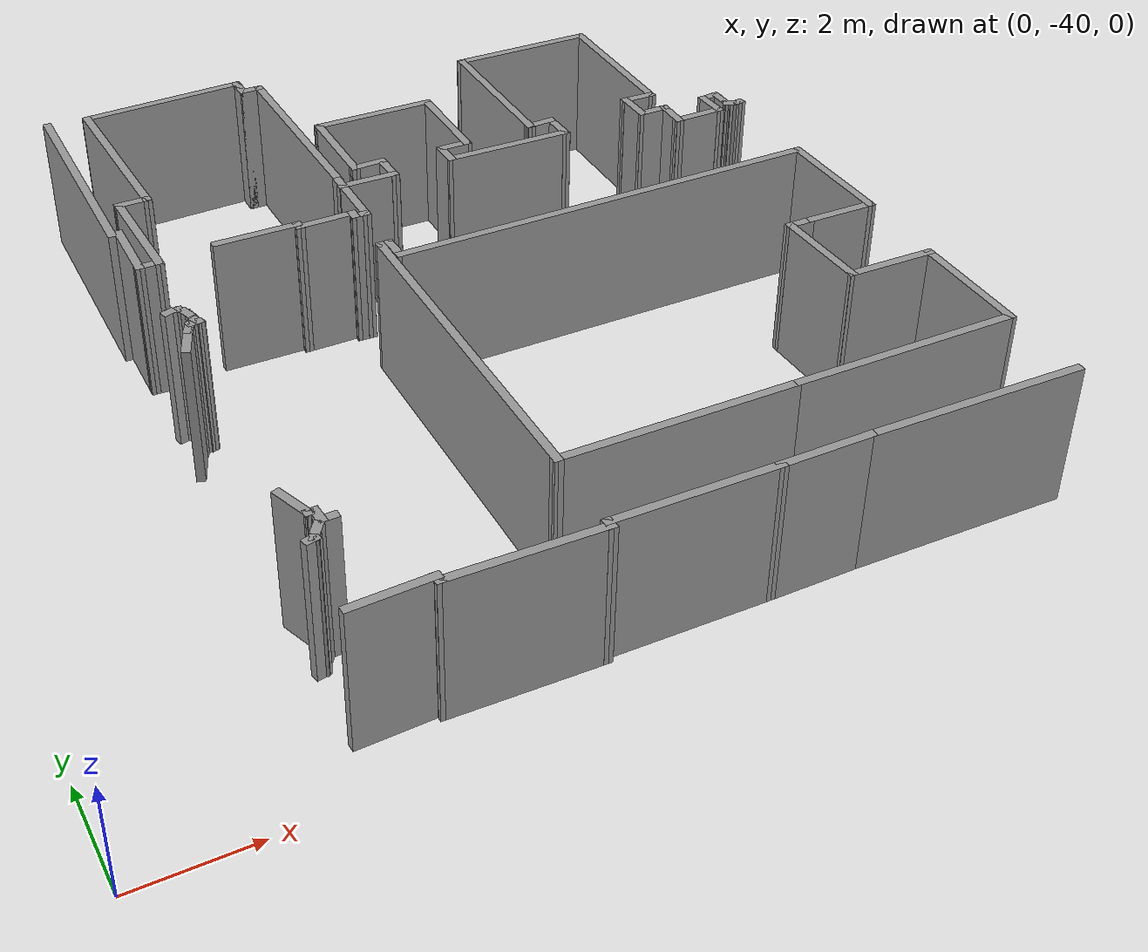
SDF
<sdf version="1.6">
 <model name="3_north">
  <pose>-14.229 -33.4428 0 0 -0 0</pose>
  <link name="Wall_100">
   <collision name="Wall_100_Collision">
    <geometry><box><size>3.97618 0.15 2.5</size></box></geometry>
    <pose>0 0 1.25 0 -0 0</pose>
   </collision>
   <visual name="Wall_100_Visual">
    <pose>0 0 1.25 0 -0 0</pose>
    <geometry><box><size>3.97618 0.15 2.5</size></box></geometry>
    <material>
     <script><uri>file://media/materials/scripts/gazebo.material</uri><name>Gazebo/Grey</name></script>
     <ambient>1 1 1 1</ambient>
    </material>
   </visual>
   <pose>21.8575 6.39452 0 0 0 -1.56398</pose>
  </link>
  <link name="Wall_102">
   <collision name="Wall_102_Collision">
    <geometry><box><size>1.57037 0.15 2.5</size></box></geometry>
    <pose>0 0 1.25 0 -0 0</pose>
   </collision>
   <visual name="Wall_102_Visual">
    <pose>0 0 1.25 0 -0 0</pose>
    <geometry><box><size>1.57037 0.15 2.5</size></box></geometry>
    <material>
     <script><uri>file://media/materials/scripts/gazebo.material</uri><name>Gazebo/Grey</name></script>
     <ambient>1 1 1 1</ambient>
    </material>
   </visual>
   <pose>19.9758 3.40527 0 0 0 -0.013888</pose>
  </link>
  <link name="Wall_103">
   <collision name="Wall_103_Collision">
    <geometry><box><size>0.235477 0.15 2.5</size></box></geometry>
    <pose>0 0 1.25 0 -0 0</pose>
   </collision>
   <visual name="Wall_103_Visual">
    <pose>0 0 1.25 0 -0 0</pose>
    <geometry><box><size>0.235477 0.15 2.5</size></box></geometry>
    <material>
     <script><uri>file://media/materials/scripts/gazebo.material</uri><name>Gazebo/Grey</name></script>
     <ambient>1 1 1 1</ambient>
    </material>
   </visual>
   <pose>20.6859 3.35267 0 0 0 -1.5708</pose>
  </link>
  <link name="Wall_104">
   <collision name="Wall_104_Collision">
    <geometry><box><size>1.11 0.15 2.5</size></box></geometry>
    <pose>0 0 1.25 0 -0 0</pose>
   </collision>
   <visual name="Wall_104_Visual">
    <pose>0 0 1.25 0 -0 0</pose>
    <geometry><box><size>1.11 0.15 2.5</size></box></geometry>
    <material>
     <script><uri>file://media/materials/scripts/gazebo.material</uri><name>Gazebo/Grey</name></script>
     <ambient>1 1 1 1</ambient>
    </material>
   </visual>
   <pose>21.1659 3.31322 0 0 -0 0.006849</pose>
  </link>
  <link name="Wall_105">
   <collision name="Wall_105_Collision">
    <geometry><box><size>0.248627 0.15 2.5</size></box></geometry>
    <pose>0 0 1.25 0 -0 0</pose>
   </collision>
   <visual name="Wall_105_Visual">
    <pose>0 0 1.25 0 -0 0</pose>
    <geometry><box><size>0.248627 0.15 2.5</size></box></geometry>
    <material>
     <script><uri>file://media/materials/scripts/gazebo.material</uri><name>Gazebo/Grey</name></script>
     <ambient>1 1 1 1</ambient>
    </material>
   </visual>
   <pose>21.6459 3.26719 0 0 0 -1.5708</pose>
  </link>
  <link name="Wall_106">
   <collision name="Wall_106_Collision">
    <geometry><box><size>0.347364 0.15 2.5</size></box></geometry>
    <pose>0 0 1.25 0 -0 0</pose>
   </collision>
   <visual name="Wall_106_Visual">
    <pose>0 0 1.25 0 -0 0</pose>
    <geometry><box><size>0.347364 0.15 2.5</size></box></geometry>
    <material>
     <script><uri>file://media/materials/scripts/gazebo.material</uri><name>Gazebo/Grey</name></script>
     <ambient>1 1 1 1</ambient>
    </material>
   </visual>
   <pose>21.7445 3.21459 0 0 0 -0.033321</pose>
  </link>
  <link name="Wall_107">
   <collision name="Wall_107_Collision">
    <geometry><box><size>1.39271 0.15 2.5</size></box></geometry>
    <pose>0 0 1.25 0 -0 0</pose>
   </collision>
   <visual name="Wall_107_Visual">
    <pose>0 0 1.25 0 -0 0</pose>
    <geometry><box><size>1.39271 0.15 2.5</size></box></geometry>
    <material>
     <script><uri>file://media/materials/scripts/gazebo.material</uri><name>Gazebo/Grey</name></script>
     <ambient>1 1 1 1</ambient>
    </material>
   </visual>
   <pose>21.8497 3.83265 0 0 -0 1.56021</pose>
  </link>
  <link name="Wall_110">
   <collision name="Wall_110_Collision">
    <geometry><box><size>1.11627 0.15 2.5</size></box></geometry>
    <pose>0 0 1.25 0 -0 0</pose>
   </collision>
   <visual name="Wall_110_Visual">
    <pose>0 0 1.25 0 -0 0</pose>
    <geometry><box><size>1.11627 0.15 2.5</size></box></geometry>
    <material>
     <script><uri>file://media/materials/scripts/gazebo.material</uri><name>Gazebo/Grey</name></script>
     <ambient>1 1 1 1</ambient>
    </material>
   </visual>
   <pose>22.3246 4.22289 0 0 0 -0.023805</pose>
  </link>
  <link name="Wall_111">
   <collision name="Wall_111_Collision">
    <geometry><box><size>0.6675 0.15 2.5</size></box></geometry>
    <pose>0 0 1.25 0 -0 0</pose>
   </collision>
   <visual name="Wall_111_Visual">
    <pose>0 0 1.25 0 -0 0</pose>
    <geometry><box><size>0.6675 0.15 2.5</size></box></geometry>
    <material>
     <script><uri>file://media/materials/scripts/gazebo.material</uri><name>Gazebo/Grey</name></script>
     <ambient>1 1 1 1</ambient>
    </material>
   </visual>
   <pose>22.8019 4.47014 0 0 -0 1.59302</pose>
  </link>
  <link name="Wall_112">
   <collision name="Wall_112_Collision">
    <geometry><box><size>0.667628 0.15 2.5</size></box></geometry>
    <pose>0 0 1.25 0 -0 0</pose>
   </collision>
   <visual name="Wall_112_Visual">
    <pose>0 0 1.25 0 -0 0</pose>
    <geometry><box><size>0.667628 0.15 2.5</size></box></geometry>
    <material>
     <script><uri>file://media/materials/scripts/gazebo.material</uri><name>Gazebo/Grey</name></script>
     <ambient>1 1 1 1</ambient>
    </material>
   </visual>
   <pose>22.5374 4.72314 0 0 0 -3.11937</pose>
  </link>
  <link name="Wall_113">
   <collision name="Wall_113_Collision">
    <geometry><box><size>1.82904 0.15 2.5</size></box></geometry>
    <pose>0 0 1.25 0 -0 0</pose>
   </collision>
   <visual name="Wall_113_Visual">
    <pose>0 0 1.25 0 -0 0</pose>
    <geometry><box><size>1.82904 0.15 2.5</size></box></geometry>
    <material>
     <script><uri>file://media/materials/scripts/gazebo.material</uri><name>Gazebo/Grey</name></script>
     <ambient>1 1 1 1</ambient>
    </material>
   </visual>
   <pose>22.2844 5.55689 0 0 -0 1.56395</pose>
  </link>
  <link name="Wall_114">
   <collision name="Wall_114_Collision">
    <geometry><box><size>2.28912 0.15 2.5</size></box></geometry>
    <pose>0 0 1.25 0 -0 0</pose>
   </collision>
   <visual name="Wall_114_Visual">
    <pose>0 0 1.25 0 -0 0</pose>
    <geometry><box><size>2.28912 0.15 2.5</size></box></geometry>
    <material>
     <script><uri>file://media/materials/scripts/gazebo.material</uri><name>Gazebo/Grey</name></script>
     <ambient>1 1 1 1</ambient>
    </material>
   </visual>
   <pose>23.3596 6.38489 0 0 0 -0.010752</pose>
  </link>
  <link name="Wall_115">
   <collision name="Wall_115_Collision">
    <geometry><box><size>1.86354 0.15 2.5</size></box></geometry>
    <pose>0 0 1.25 0 -0 0</pose>
   </collision>
   <visual name="Wall_115_Visual">
    <pose>0 0 1.25 0 -0 0</pose>
    <geometry><box><size>1.86354 0.15 2.5</size></box></geometry>
    <material>
     <script><uri>file://media/materials/scripts/gazebo.material</uri><name>Gazebo/Grey</name></script>
     <ambient>1 1 1 1</ambient>
    </material>
   </visual>
   <pose>24.4234 5.51664 0 0 0 -1.57751</pose>
  </link>
  <link name="Wall_116">
   <collision name="Wall_116_Collision">
    <geometry><box><size>0.6445 0.15 2.5</size></box></geometry>
    <pose>0 0 1.25 0 -0 0</pose>
   </collision>
   <visual name="Wall_116_Visual">
    <pose>0 0 1.25 0 -0 0</pose>
    <geometry><box><size>0.6445 0.15 2.5</size></box></geometry>
    <material>
     <script><uri>file://media/materials/scripts/gazebo.material</uri><name>Gazebo/Grey</name></script>
     <ambient>1 1 1 1</ambient>
    </material>
   </visual>
   <pose>24.1704 4.65989 0 0 -0 3.14159</pose>
  </link>
  <link name="Wall_117">
   <collision name="Wall_117_Collision">
    <geometry><box><size>0.5525 0.15 2.5</size></box></geometry>
    <pose>0 0 1.25 0 -0 0</pose>
   </collision>
   <visual name="Wall_117_Visual">
    <pose>0 0 1.25 0 -0 0</pose>
    <geometry><box><size>0.5525 0.15 2.5</size></box></geometry>
    <material>
     <script><uri>file://media/materials/scripts/gazebo.material</uri><name>Gazebo/Grey</name></script>
     <ambient>1 1 1 1</ambient>
    </material>
   </visual>
   <pose>23.9231 4.45864 0 0 0 -1.5708</pose>
  </link>
  <link name="Wall_118">
   <collision name="Wall_118_Collision">
    <geometry><box><size>2.39262 0.15 2.5</size></box></geometry>
    <pose>0 0 1.25 0 -0 0</pose>
   </collision>
   <visual name="Wall_118_Visual">
    <pose>0 0 1.25 0 -0 0</pose>
    <geometry><box><size>2.39262 0.15 2.5</size></box></geometry>
    <material>
     <script><uri>file://media/materials/scripts/gazebo.material</uri><name>Gazebo/Grey</name></script>
     <ambient>1 1 1 1</ambient>
    </material>
   </visual>
   <pose>25.0444 4.23439 0 0 0 -0.02051</pose>
  </link>
  <link name="Wall_119">
   <collision name="Wall_119_Collision">
    <geometry><box><size>0.667628 0.15 2.5</size></box></geometry>
    <pose>0 0 1.25 0 -0 0</pose>
   </collision>
   <visual name="Wall_119_Visual">
    <pose>0 0 1.25 0 -0 0</pose>
    <geometry><box><size>0.667628 0.15 2.5</size></box></geometry>
    <material>
     <script><uri>file://media/materials/scripts/gazebo.material</uri><name>Gazebo/Grey</name></script>
     <ambient>1 1 1 1</ambient>
    </material>
   </visual>
   <pose>26.1599 4.47014 0 0 -0 1.59302</pose>
  </link>
  <link name="Wall_120">
   <collision name="Wall_120_Collision">
    <geometry><box><size>0.587605 0.15 2.5</size></box></geometry>
    <pose>0 0 1.25 0 -0 0</pose>
   </collision>
   <visual name="Wall_120_Visual">
    <pose>0 0 1.25 0 -0 0</pose>
    <geometry><box><size>0.587605 0.15 2.5</size></box></geometry>
    <material>
     <script><uri>file://media/materials/scripts/gazebo.material</uri><name>Gazebo/Grey</name></script>
     <ambient>1 1 1 1</ambient>
    </material>
   </visual>
   <pose>25.9356 4.71739 0 0 0 -3.08901</pose>
  </link>
  <link name="Wall_121">
   <collision name="Wall_121_Collision">
    <geometry><box><size>3.02502 0.15 2.5</size></box></geometry>
    <pose>0 0 1.25 0 -0 0</pose>
   </collision>
   <visual name="Wall_121_Visual">
    <pose>0 0 1.25 0 -0 0</pose>
    <geometry><box><size>3.02502 0.15 2.5</size></box></geometry>
    <material>
     <script><uri>file://media/materials/scripts/gazebo.material</uri><name>Gazebo/Grey</name></script>
     <ambient>1 1 1 1</ambient>
    </material>
   </visual>
   <pose>25.7229 6.14339 0 0 -0 1.5668</pose>
  </link>
  <link name="Wall_122">
   <collision name="Wall_122_Collision">
    <geometry><box><size>2.72664 0.15 2.5</size></box></geometry>
    <pose>0 0 1.25 0 -0 0</pose>
   </collision>
   <visual name="Wall_122_Visual">
    <pose>0 0 1.25 0 -0 0</pose>
    <geometry><box><size>2.72664 0.15 2.5</size></box></geometry>
    <material>
     <script><uri>file://media/materials/scripts/gazebo.material</uri><name>Gazebo/Grey</name></script>
     <ambient>1 1 1 1</ambient>
    </material>
   </visual>
   <pose>27.0166 7.56939 0 0 0 -0.008928</pose>
  </link>
  <link name="Wall_123">
   <collision name="Wall_123_Collision">
    <geometry><box><size>2.93309 0.15 2.5</size></box></geometry>
    <pose>0 0 1.25 0 -0 0</pose>
   </collision>
   <visual name="Wall_123_Visual">
    <pose>0 0 1.25 0 -0 0</pose>
    <geometry><box><size>2.93309 0.15 2.5</size></box></geometry>
    <material>
     <script><uri>file://media/materials/scripts/gazebo.material</uri><name>Gazebo/Grey</name></script>
     <ambient>1 1 1 1</ambient>
    </material>
   </visual>
   <pose>28.2931 6.16639 0 0 0 -1.57906</pose>
  </link>
  <link name="Wall_124">
   <collision name="Wall_124_Collision">
    <geometry><box><size>0.667628 0.15 2.5</size></box></geometry>
    <pose>0 0 1.25 0 -0 0</pose>
   </collision>
   <visual name="Wall_124_Visual">
    <pose>0 0 1.25 0 -0 0</pose>
    <geometry><box><size>0.667628 0.15 2.5</size></box></geometry>
    <material>
     <script><uri>file://media/materials/scripts/gazebo.material</uri><name>Gazebo/Grey</name></script>
     <ambient>1 1 1 1</ambient>
    </material>
   </visual>
   <pose>28.0229 4.78064 0 0 -0 3.11937</pose>
  </link>
  <link name="Wall_125">
   <collision name="Wall_125_Collision">
    <geometry><box><size>0.725115 0.15 2.5</size></box></geometry>
    <pose>0 0 1.25 0 -0 0</pose>
   </collision>
   <visual name="Wall_125_Visual">
    <pose>0 0 1.25 0 -0 0</pose>
    <geometry><box><size>0.725115 0.15 2.5</size></box></geometry>
    <material>
     <script><uri>file://media/materials/scripts/gazebo.material</uri><name>Gazebo/Grey</name></script>
     <ambient>1 1 1 1</ambient>
    </material>
   </visual>
   <pose>27.7699 4.49889 0 0 0 -1.5508</pose>
  </link>
  <link name="Wall_126">
   <collision name="Wall_126_Collision">
    <geometry><box><size>0.633 0.15 2.5</size></box></geometry>
    <pose>0 0 1.25 0 -0 0</pose>
   </collision>
   <visual name="Wall_126_Visual">
    <pose>0 0 1.25 0 -0 0</pose>
    <geometry><box><size>0.633 0.15 2.5</size></box></geometry>
    <material>
     <script><uri>file://media/materials/scripts/gazebo.material</uri><name>Gazebo/Grey</name></script>
     <ambient>1 1 1 1</ambient>
    </material>
   </visual>
   <pose>28.0171 4.21139 0 0 -0 0</pose>
  </link>
  <link name="Wall_127">
   <collision name="Wall_127_Collision">
    <geometry><box><size>0.667628 0.15 2.5</size></box></geometry>
    <pose>0 0 1.25 0 -0 0</pose>
   </collision>
   <visual name="Wall_127_Visual">
    <pose>0 0 1.25 0 -0 0</pose>
    <geometry><box><size>0.667628 0.15 2.5</size></box></geometry>
    <material>
     <script><uri>file://media/materials/scripts/gazebo.material</uri><name>Gazebo/Grey</name></script>
     <ambient>1 1 1 1</ambient>
    </material>
   </visual>
   <pose>28.2529 3.95264 0 0 0 -1.59302</pose>
  </link>
  <link name="Wall_128">
   <collision name="Wall_128_Collision">
    <geometry><box><size>1.01258 0.15 2.5</size></box></geometry>
    <pose>0 0 1.25 0 -0 0</pose>
   </collision>
   <visual name="Wall_128_Visual">
    <pose>0 0 1.25 0 -0 0</pose>
    <geometry><box><size>1.01258 0.15 2.5</size></box></geometry>
    <material>
     <script><uri>file://media/materials/scripts/gazebo.material</uri><name>Gazebo/Grey</name></script>
     <ambient>1 1 1 1</ambient>
    </material>
   </visual>
   <pose>28.6784 3.69964 0 0 -0 0.013333</pose>
  </link>
  <link name="Wall_129">
   <collision name="Wall_129_Collision">
    <geometry><box><size>0.645035 0.15 2.5</size></box></geometry>
    <pose>0 0 1.25 0 -0 0</pose>
   </collision>
   <visual name="Wall_129_Visual">
    <pose>0 0 1.25 0 -0 0</pose>
    <geometry><box><size>0.645035 0.15 2.5</size></box></geometry>
    <material>
     <script><uri>file://media/materials/scripts/gazebo.material</uri><name>Gazebo/Grey</name></script>
     <ambient>1 1 1 1</ambient>
    </material>
   </visual>
   <pose>29.0981 3.95264 0 0 -0 1.61727</pose>
  </link>
  <link name="Wall_130">
   <collision name="Wall_130_Collision">
    <geometry><box><size>0.426957 0.15 2.5</size></box></geometry>
    <pose>0 0 1.25 0 -0 0</pose>
   </collision>
   <visual name="Wall_130_Visual">
    <pose>0 0 1.25 0 -0 0</pose>
    <geometry><box><size>0.426957 0.15 2.5</size></box></geometry>
    <material>
     <script><uri>file://media/materials/scripts/gazebo.material</uri><name>Gazebo/Grey</name></script>
     <ambient>1 1 1 1</ambient>
    </material>
   </visual>
   <pose>29.2246 4.21139 0 0 -0 0.083141</pose>
  </link>
  <link name="Wall_131">
   <collision name="Wall_131_Collision">
    <geometry><box><size>0.529674 0.15 2.5</size></box></geometry>
    <pose>0 0 1.25 0 -0 0</pose>
   </collision>
   <visual name="Wall_131_Visual">
    <pose>0 0 1.25 0 -0 0</pose>
    <geometry><box><size>0.529674 0.15 2.5</size></box></geometry>
    <material>
     <script><uri>file://media/materials/scripts/gazebo.material</uri><name>Gazebo/Grey</name></script>
     <ambient>1 1 1 1</ambient>
    </material>
   </visual>
   <pose>29.3684 4.03314 0 0 0 -1.5405</pose>
  </link>
  <link name="Wall_132">
   <collision name="Wall_132_Collision">
    <geometry><box><size>0.252859 0.15 2.5</size></box></geometry>
    <pose>0 0 1.25 0 -0 0</pose>
   </collision>
   <visual name="Wall_132_Visual">
    <pose>0 0 1.25 0 -0 0</pose>
    <geometry><box><size>0.252859 0.15 2.5</size></box></geometry>
    <material>
     <script><uri>file://media/materials/scripts/gazebo.material</uri><name>Gazebo/Grey</name></script>
     <ambient>1 1 1 1</ambient>
    </material>
   </visual>
   <pose>29.4201 3.82039 0 0 0 -0.463648</pose>
  </link>
  <link name="Wall_133">
   <collision name="Wall_133_Collision">
    <geometry><box><size>0.242716 0.15 2.5</size></box></geometry>
    <pose>0 0 1.25 0 -0 0</pose>
   </collision>
   <visual name="Wall_133_Visual">
    <pose>0 0 1.25 0 -0 0</pose>
    <geometry><box><size>0.242716 0.15 2.5</size></box></geometry>
    <material>
     <script><uri>file://media/materials/scripts/gazebo.material</uri><name>Gazebo/Grey</name></script>
     <ambient>1 1 1 1</ambient>
    </material>
   </visual>
   <pose>29.5121 3.79164 0 0 0 -0.124355</pose>
  </link>
  <link name="Wall_134">
   <collision name="Wall_134_Collision">
    <geometry><box><size>0.219952 0.15 2.5</size></box></geometry>
    <pose>0 0 1.25 0 -0 0</pose>
   </collision>
   <visual name="Wall_134_Visual">
    <pose>0 0 1.25 0 -0 0</pose>
    <geometry><box><size>0.219952 0.15 2.5</size></box></geometry>
    <material>
     <script><uri>file://media/materials/scripts/gazebo.material</uri><name>Gazebo/Grey</name></script>
     <ambient>1 1 1 1</ambient>
    </material>
   </visual>
   <pose>29.5926 3.79164 0 0 -0 0.165149</pose>
  </link>
  <link name="Wall_136">
   <collision name="Wall_136_Collision">
    <geometry><box><size>7.88001 0.15 2.5</size></box></geometry>
    <pose>0 0 1.25 0 -0 0</pose>
   </collision>
   <visual name="Wall_136_Visual">
    <pose>0 0 1.25 0 -0 0</pose>
    <geometry><box><size>7.88001 0.15 2.5</size></box></geometry>
    <material>
     <script><uri>file://media/materials/scripts/gazebo.material</uri><name>Gazebo/Grey</name></script>
     <ambient>1 1 1 1</ambient>
    </material>
   </visual>
   <pose>25.6999 1.76967 0 0 0 -3.1403</pose>
  </link>
  <link name="Wall_138">
   <collision name="Wall_138_Collision">
    <geometry><box><size>0.570119 0.15 2.5</size></box></geometry>
    <pose>0 0 1.25 0 -0 0</pose>
   </collision>
   <visual name="Wall_138_Visual">
    <pose>0 0 1.25 0 -0 0</pose>
    <geometry><box><size>0.570119 0.15 2.5</size></box></geometry>
    <material>
     <script><uri>file://media/materials/scripts/gazebo.material</uri><name>Gazebo/Grey</name></script>
     <ambient>1 1 1 1</ambient>
    </material>
   </visual>
   <pose>21.8299 1.97467 0 0 -0 1.5946</pose>
  </link>
  <link name="Wall_139">
   <collision name="Wall_139_Collision">
    <geometry><box><size>0.3 0.15 2.5</size></box></geometry>
    <pose>0 0 1.25 0 -0 0</pose>
   </collision>
   <visual name="Wall_139_Visual">
    <pose>0 0 1.25 0 -0 0</pose>
    <geometry><box><size>0.3 0.15 2.5</size></box></geometry>
    <material>
     <script><uri>file://media/materials/scripts/gazebo.material</uri><name>Gazebo/Grey</name></script>
     <ambient>1 1 1 1</ambient>
    </material>
   </visual>
   <pose>21.7499 2.18467 0 0 -0 3.14159</pose>
  </link>
  <link name="Wall_140">
   <collision name="Wall_140_Collision">
    <geometry><box><size>6.42039 0.15 2.5</size></box></geometry>
    <pose>0 0 1.25 0 -0 0</pose>
   </collision>
   <visual name="Wall_140_Visual">
    <pose>0 0 1.25 0 -0 0</pose>
    <geometry><box><size>6.42039 0.15 2.5</size></box></geometry>
    <material>
     <script><uri>file://media/materials/scripts/gazebo.material</uri><name>Gazebo/Grey</name></script>
     <ambient>1 1 1 1</ambient>
    </material>
   </visual>
   <pose>21.6499 -0.95033 0 0 0 -1.57877</pose>
  </link>
  <link name="Wall_142">
   <collision name="Wall_142_Collision">
    <geometry><box><size>4.1902 0.15 2.5</size></box></geometry>
    <pose>0 0 1.25 0 -0 0</pose>
   </collision>
   <visual name="Wall_142_Visual">
    <pose>0 0 1.25 0 -0 0</pose>
    <geometry><box><size>4.1902 0.15 2.5</size></box></geometry>
    <material>
     <script><uri>file://media/materials/scripts/gazebo.material</uri><name>Gazebo/Grey</name></script>
     <ambient>1 1 1 1</ambient>
    </material>
   </visual>
   <pose>23.6449 -4.09033 0 0 0 -0.002475</pose>
  </link>
  <link name="Wall_143">
   <collision name="Wall_143_Collision">
    <geometry><box><size>4.03001 0.15 2.5</size></box></geometry>
    <pose>0 0 1.25 0 -0 0</pose>
   </collision>
   <visual name="Wall_143_Visual">
    <pose>0 0 1.25 0 -0 0</pose>
    <geometry><box><size>4.03001 0.15 2.5</size></box></geometry>
    <material>
     <script><uri>file://media/materials/scripts/gazebo.material</uri><name>Gazebo/Grey</name></script>
     <ambient>1 1 1 1</ambient>
    </material>
   </visual>
   <pose>27.6049 -4.10033 0 0 0 -0.002577</pose>
  </link>
  <link name="Wall_144">
   <collision name="Wall_144_Collision">
    <geometry><box><size>2.2201 0.15 2.5</size></box></geometry>
    <pose>0 0 1.25 0 -0 0</pose>
   </collision>
   <visual name="Wall_144_Visual">
    <pose>0 0 1.25 0 -0 0</pose>
    <geometry><box><size>2.2201 0.15 2.5</size></box></geometry>
    <material>
     <script><uri>file://media/materials/scripts/gazebo.material</uri><name>Gazebo/Grey</name></script>
     <ambient>1 1 1 1</ambient>
    </material>
   </visual>
   <pose>29.5549 -3.07033 0 0 -0 1.56113</pose>
  </link>
  <link name="Wall_145">
   <collision name="Wall_145_Collision">
    <geometry><box><size>1.6503 0.15 2.5</size></box></geometry>
    <pose>0 0 1.25 0 -0 0</pose>
   </collision>
   <visual name="Wall_145_Visual">
    <pose>0 0 1.25 0 -0 0</pose>
    <geometry><box><size>1.6503 0.15 2.5</size></box></geometry>
    <material>
     <script><uri>file://media/materials/scripts/gazebo.material</uri><name>Gazebo/Grey</name></script>
     <ambient>1 1 1 1</ambient>
    </material>
   </visual>
   <pose>28.8149 -2.02033 0 0 -0 3.1216</pose>
  </link>
  <link name="Wall_147">
   <collision name="Wall_147_Collision">
    <geometry><box><size>1.83074 0.15 2.5</size></box></geometry>
    <pose>0 0 1.25 0 -0 0</pose>
   </collision>
   <visual name="Wall_147_Visual">
    <pose>0 0 1.25 0 -0 0</pose>
    <geometry><box><size>1.83074 0.15 2.5</size></box></geometry>
    <material>
     <script><uri>file://media/materials/scripts/gazebo.material</uri><name>Gazebo/Grey</name></script>
     <ambient>1 1 1 1</ambient>
    </material>
   </visual>
   <pose>28.0399 -1.16533 0 0 -0 1.60055</pose>
  </link>
  <link name="Wall_148">
   <collision name="Wall_148_Collision">
    <geometry><box><size>0.57 0.15 2.5</size></box></geometry>
    <pose>0 0 1.25 0 -0 0</pose>
   </collision>
   <visual name="Wall_148_Visual">
    <pose>0 0 1.25 0 -0 0</pose>
    <geometry><box><size>0.57 0.15 2.5</size></box></geometry>
    <material>
     <script><uri>file://media/materials/scripts/gazebo.material</uri><name>Gazebo/Grey</name></script>
     <ambient>1 1 1 1</ambient>
    </material>
   </visual>
   <pose>28.2249 -0.32533 0 0 -0 0</pose>
  </link>
  <link name="Wall_149">
   <collision name="Wall_149_Collision">
    <geometry><box><size>1.31017 0.15 2.5</size></box></geometry>
    <pose>0 0 1.25 0 -0 0</pose>
   </collision>
   <visual name="Wall_149_Visual">
    <pose>0 0 1.25 0 -0 0</pose>
    <geometry><box><size>1.31017 0.15 2.5</size></box></geometry>
    <material>
     <script><uri>file://media/materials/scripts/gazebo.material</uri><name>Gazebo/Grey</name></script>
     <ambient>1 1 1 1</ambient>
    </material>
   </visual>
   <pose>29.0149 -0.33533 0 0 0 -0.01724</pose>
  </link>
  <link name="Wall_150">
   <collision name="Wall_150_Collision">
    <geometry><box><size>2.27059 0.15 2.5</size></box></geometry>
    <pose>0 0 1.25 0 -0 0</pose>
   </collision>
   <visual name="Wall_150_Visual">
    <pose>0 0 1.25 0 -0 0</pose>
    <geometry><box><size>2.27059 0.15 2.5</size></box></geometry>
    <material>
     <script><uri>file://media/materials/scripts/gazebo.material</uri><name>Gazebo/Grey</name></script>
     <ambient>1 1 1 1</ambient>
    </material>
   </visual>
   <pose>29.5799 0.71467 0 0 -0 1.58495</pose>
  </link>
  <link name="Wall_152">
   <collision name="Wall_152_Collision">
    <geometry><box><size>3.85049 0.15 2.5</size></box></geometry>
    <pose>0 0 1.25 0 -0 0</pose>
   </collision>
   <visual name="Wall_152_Visual">
    <pose>0 0 1.25 0 -0 0</pose>
    <geometry><box><size>3.85049 0.15 2.5</size></box></geometry>
    <material>
     <script><uri>file://media/materials/scripts/gazebo.material</uri><name>Gazebo/Grey</name></script>
     <ambient>1 1 1 1</ambient>
    </material>
   </visual>
   <pose>27.7149 -5.62533 0 0 -0 3.12538</pose>
  </link>
  <link name="Wall_153">
   <collision name="Wall_153_Collision">
    <geometry><box><size>1.66003 0.15 2.5</size></box></geometry>
    <pose>0 0 1.25 0 -0 0</pose>
   </collision>
   <visual name="Wall_153_Visual">
    <pose>0 0 1.25 0 -0 0</pose>
    <geometry><box><size>1.66003 0.15 2.5</size></box></geometry>
    <material>
     <script><uri>file://media/materials/scripts/gazebo.material</uri><name>Gazebo/Grey</name></script>
     <ambient>1 1 1 1</ambient>
    </material>
   </visual>
   <pose>25.1099 -5.60033 0 0 0 -3.13497</pose>
  </link>
  <link name="Wall_155">
   <collision name="Wall_155_Collision">
    <geometry><box><size>2.90016 0.15 2.5</size></box></geometry>
    <pose>0 0 1.25 0 -0 0</pose>
   </collision>
   <visual name="Wall_155_Visual">
    <pose>0 0 1.25 0 -0 0</pose>
    <geometry><box><size>2.90016 0.15 2.5</size></box></geometry>
    <material>
     <script><uri>file://media/materials/scripts/gazebo.material</uri><name>Gazebo/Grey</name></script>
     <ambient>1 1 1 1</ambient>
    </material>
   </visual>
   <pose>22.9799 -5.59533 0 0 -0 3.13432</pose>
  </link>
  <link name="Wall_156">
   <collision name="Wall_156_Collision">
    <geometry><box><size>0.24 0.15 2.5</size></box></geometry>
    <pose>0 0 1.25 0 -0 0</pose>
   </collision>
   <visual name="Wall_156_Visual">
    <pose>0 0 1.25 0 -0 0</pose>
    <geometry><box><size>0.24 0.15 2.5</size></box></geometry>
    <material>
     <script><uri>file://media/materials/scripts/gazebo.material</uri><name>Gazebo/Grey</name></script>
     <ambient>1 1 1 1</ambient>
    </material>
   </visual>
   <pose>21.6049 -5.63033 0 0 0 -1.5708</pose>
  </link>
  <link name="Wall_157">
   <collision name="Wall_157_Collision">
    <geometry><box><size>2.6505 0.15 2.5</size></box></geometry>
    <pose>0 0 1.25 0 -0 0</pose>
   </collision>
   <visual name="Wall_157_Visual">
    <pose>0 0 1.25 0 -0 0</pose>
    <geometry><box><size>2.6505 0.15 2.5</size></box></geometry>
    <material>
     <script><uri>file://media/materials/scripts/gazebo.material</uri><name>Gazebo/Grey</name></script>
     <ambient>1 1 1 1</ambient>
    </material>
   </visual>
   <pose>20.3549 -5.65033 0 0 -0 3.1216</pose>
  </link>
  <link name="Wall_158">
   <collision name="Wall_158_Collision">
    <geometry><box><size>0.24 0.15 2.5</size></box></geometry>
    <pose>0 0 1.25 0 -0 0</pose>
   </collision>
   <visual name="Wall_158_Visual">
    <pose>0 0 1.25 0 -0 0</pose>
    <geometry><box><size>0.24 0.15 2.5</size></box></geometry>
    <material>
     <script><uri>file://media/materials/scripts/gazebo.material</uri><name>Gazebo/Grey</name></script>
     <ambient>1 1 1 1</ambient>
    </material>
   </visual>
   <pose>19.1049 -5.58033 0 0 -0 1.5708</pose>
  </link>
  <link name="Wall_159">
   <collision name="Wall_159_Collision">
    <geometry><box><size>1.43098 0.15 2.5</size></box></geometry>
    <pose>0 0 1.25 0 -0 0</pose>
   </collision>
   <visual name="Wall_159_Visual">
    <pose>0 0 1.25 0 -0 0</pose>
    <geometry><box><size>1.43098 0.15 2.5</size></box></geometry>
    <material>
     <script><uri>file://media/materials/scripts/gazebo.material</uri><name>Gazebo/Grey</name></script>
     <ambient>1 1 1 1</ambient>
    </material>
   </visual>
   <pose>18.4649 -5.56033 0 0 0 -3.10255</pose>
  </link>
  <link name="Wall_398">
   <collision name="Wall_398_Collision">
    <geometry><box><size>0.233721 0.15 2.5</size></box></geometry>
    <pose>0 0 1.25 0 -0 0</pose>
   </collision>
   <visual name="Wall_398_Visual">
    <pose>0 0 1.25 0 -0 0</pose>
    <geometry><box><size>0.233721 0.15 2.5</size></box></geometry>
    <material>
     <script><uri>file://media/materials/scripts/gazebo.material</uri><name>Gazebo/Grey</name></script>
     <ambient>1 1 1 1</ambient>
    </material>
   </visual>
   <pose>17.9379 1.83794 0 0 -0 0.2783</pose>
  </link>
  <link name="Wall_399">
   <collision name="Wall_399_Collision">
    <geometry><box><size>0.265 0.15 2.5</size></box></geometry>
    <pose>0 0 1.25 0 -0 0</pose>
   </collision>
   <visual name="Wall_399_Visual">
    <pose>0 0 1.25 0 -0 0</pose>
    <geometry><box><size>0.265 0.15 2.5</size></box></geometry>
    <material>
     <script><uri>file://media/materials/scripts/gazebo.material</uri><name>Gazebo/Grey</name></script>
     <ambient>1 1 1 1</ambient>
    </material>
   </visual>
   <pose>18.0356 1.84943 0 0 -0 0</pose>
  </link>
  <link name="Wall_400">
   <collision name="Wall_400_Collision">
    <geometry><box><size>0.256025 0.15 2.5</size></box></geometry>
    <pose>0 0 1.25 0 -0 0</pose>
   </collision>
   <visual name="Wall_400_Visual">
    <pose>0 0 1.25 0 -0 0</pose>
    <geometry><box><size>0.256025 0.15 2.5</size></box></geometry>
    <material>
     <script><uri>file://media/materials/scripts/gazebo.material</uri><name>Gazebo/Grey</name></script>
     <ambient>1 1 1 1</ambient>
    </material>
   </visual>
   <pose>18.1276 1.80919 0 0 0 -0.86217</pose>
  </link>
  <link name="Wall_401">
   <collision name="Wall_401_Collision">
    <geometry><box><size>0.284604 0.15 2.5</size></box></geometry>
    <pose>0 0 1.25 0 -0 0</pose>
   </collision>
   <visual name="Wall_401_Visual">
    <pose>0 0 1.25 0 -0 0</pose>
    <geometry><box><size>0.284604 0.15 2.5</size></box></geometry>
    <material>
     <script><uri>file://media/materials/scripts/gazebo.material</uri><name>Gazebo/Grey</name></script>
     <ambient>1 1 1 1</ambient>
    </material>
   </visual>
   <pose>18.1851 1.70568 0 0 0 -1.22202</pose>
  </link>
  <link name="Wall_402">
   <collision name="Wall_402_Collision">
    <geometry><box><size>0.325916 0.15 2.5</size></box></geometry>
    <pose>0 0 1.25 0 -0 0</pose>
   </collision>
   <visual name="Wall_402_Visual">
    <pose>0 0 1.25 0 -0 0</pose>
    <geometry><box><size>0.325916 0.15 2.5</size></box></geometry>
    <material>
     <script><uri>file://media/materials/scripts/gazebo.material</uri><name>Gazebo/Grey</name></script>
     <ambient>1 1 1 1</ambient>
    </material>
   </visual>
   <pose>18.2254 1.55618 0 0 0 -1.3734</pose>
  </link>
  <link name="Wall_403">
   <collision name="Wall_403_Collision">
    <geometry><box><size>0.227144 0.15 2.5</size></box></geometry>
    <pose>0 0 1.25 0 -0 0</pose>
   </collision>
   <visual name="Wall_403_Visual">
    <pose>0 0 1.25 0 -0 0</pose>
    <geometry><box><size>0.227144 0.15 2.5</size></box></geometry>
    <material>
     <script><uri>file://media/materials/scripts/gazebo.material</uri><name>Gazebo/Grey</name></script>
     <ambient>1 1 1 1</ambient>
    </material>
   </visual>
   <pose>18.2599 1.43544 0 0 0 -1.10715</pose>
  </link>
  <link name="Wall_404">
   <collision name="Wall_404_Collision">
    <geometry><box><size>0.288478 0.15 2.5</size></box></geometry>
    <pose>0 0 1.25 0 -0 0</pose>
   </collision>
   <visual name="Wall_404_Visual">
    <pose>0 0 1.25 0 -0 0</pose>
    <geometry><box><size>0.288478 0.15 2.5</size></box></geometry>
    <material>
     <script><uri>file://media/materials/scripts/gazebo.material</uri><name>Gazebo/Grey</name></script>
     <ambient>1 1 1 1</ambient>
    </material>
   </visual>
   <pose>18.2081 1.39518 0 0 0 -3.05845</pose>
  </link>
  <link name="Wall_405">
   <collision name="Wall_405_Collision">
    <geometry><box><size>0.335432 0.15 2.5</size></box></geometry>
    <pose>0 0 1.25 0 -0 0</pose>
   </collision>
   <visual name="Wall_405_Visual">
    <pose>0 0 1.25 0 -0 0</pose>
    <geometry><box><size>0.335432 0.15 2.5</size></box></geometry>
    <material>
     <script><uri>file://media/materials/scripts/gazebo.material</uri><name>Gazebo/Grey</name></script>
     <ambient>1 1 1 1</ambient>
    </material>
   </visual>
   <pose>18.0931 1.30893 0 0 0 -2.08994</pose>
  </link>
  <link name="Wall_406">
   <collision name="Wall_406_Collision">
    <geometry><box><size>0.671065 0.15 2.5</size></box></geometry>
    <pose>0 0 1.25 0 -0 0</pose>
   </collision>
   <visual name="Wall_406_Visual">
    <pose>0 0 1.25 0 -0 0</pose>
    <geometry><box><size>0.671065 0.15 2.5</size></box></geometry>
    <material>
     <script><uri>file://media/materials/scripts/gazebo.material</uri><name>Gazebo/Grey</name></script>
     <ambient>1 1 1 1</ambient>
    </material>
   </visual>
   <pose>17.9494 0.986935 0 0 0 -1.9554</pose>
  </link>
  <link name="Wall_414">
   <collision name="Wall_414_Collision">
    <geometry><box><size>0.761125 0.15 2.5</size></box></geometry>
    <pose>0 0 1.25 0 -0 0</pose>
   </collision>
   <visual name="Wall_414_Visual">
    <pose>0 0 1.25 0 -0 0</pose>
    <geometry><box><size>0.761125 0.15 2.5</size></box></geometry>
    <material>
     <script><uri>file://media/materials/scripts/gazebo.material</uri><name>Gazebo/Grey</name></script>
     <ambient>1 1 1 1</ambient>
    </material>
   </visual>
   <pose>17.9896 -3.32557 0 0 0 -1.22524</pose>
  </link>
  <link name="Wall_415">
   <collision name="Wall_415_Collision">
    <geometry><box><size>0.242 0.15 2.5</size></box></geometry>
    <pose>0 0 1.25 0 -0 0</pose>
   </collision>
   <visual name="Wall_415_Visual">
    <pose>0 0 1.25 0 -0 0</pose>
    <geometry><box><size>0.242 0.15 2.5</size></box></geometry>
    <material>
     <script><uri>file://media/materials/scripts/gazebo.material</uri><name>Gazebo/Grey</name></script>
     <ambient>1 1 1 1</ambient>
    </material>
   </visual>
   <pose>18.1391 -3.61307 0 0 -0 0</pose>
  </link>
  <link name="Wall_416">
   <collision name="Wall_416_Collision">
    <geometry><box><size>0.357319 0.15 2.5</size></box></geometry>
    <pose>0 0 1.25 0 -0 0</pose>
   </collision>
   <visual name="Wall_416_Visual">
    <pose>0 0 1.25 0 -0 0</pose>
    <geometry><box><size>0.357319 0.15 2.5</size></box></geometry>
    <material>
     <script><uri>file://media/materials/scripts/gazebo.material</uri><name>Gazebo/Grey</name></script>
     <ambient>1 1 1 1</ambient>
    </material>
   </visual>
   <pose>18.1909 -3.71657 0 0 0 -1.5153</pose>
  </link>
  <link name="Wall_417">
   <collision name="Wall_417_Collision">
    <geometry><box><size>0.334 0.15 2.5</size></box></geometry>
    <pose>0 0 1.25 0 -0 0</pose>
   </collision>
   <visual name="Wall_417_Visual">
    <pose>0 0 1.25 0 -0 0</pose>
    <geometry><box><size>0.334 0.15 2.5</size></box></geometry>
    <material>
     <script><uri>file://media/materials/scripts/gazebo.material</uri><name>Gazebo/Grey</name></script>
     <ambient>1 1 1 1</ambient>
    </material>
   </visual>
   <pose>18.2886 -3.82007 0 0 -0 0</pose>
  </link>
  <link name="Wall_423">
   <collision name="Wall_423_Collision">
    <geometry><box><size>0.256025 0.15 2.5</size></box></geometry>
    <pose>0 0 1.25 0 -0 0</pose>
   </collision>
   <visual name="Wall_423_Visual">
    <pose>0 0 1.25 0 -0 0</pose>
    <geometry><box><size>0.256025 0.15 2.5</size></box></geometry>
    <material>
     <script><uri>file://media/materials/scripts/gazebo.material</uri><name>Gazebo/Grey</name></script>
     <ambient>1 1 1 1</ambient>
    </material>
   </visual>
   <pose>17.9264 -4.14206 0 0 -0 0.218669</pose>
  </link>
  <link name="Wall_424">
   <collision name="Wall_424_Collision">
    <geometry><box><size>0.294095 0.15 2.5</size></box></geometry>
    <pose>0 0 1.25 0 -0 0</pose>
   </collision>
   <visual name="Wall_424_Visual">
    <pose>0 0 1.25 0 -0 0</pose>
    <geometry><box><size>0.294095 0.15 2.5</size></box></geometry>
    <material>
     <script><uri>file://media/materials/scripts/gazebo.material</uri><name>Gazebo/Grey</name></script>
     <ambient>1 1 1 1</ambient>
    </material>
   </visual>
   <pose>18.0126 -4.06731 0 0 -0 1.07145</pose>
  </link>
  <link name="Wall_425">
   <collision name="Wall_425_Collision">
    <geometry><box><size>0.363912 0.15 2.5</size></box></geometry>
    <pose>0 0 1.25 0 -0 0</pose>
   </collision>
   <visual name="Wall_425_Visual">
    <pose>0 0 1.25 0 -0 0</pose>
    <geometry><box><size>0.363912 0.15 2.5</size></box></geometry>
    <material>
     <script><uri>file://media/materials/scripts/gazebo.material</uri><name>Gazebo/Grey</name></script>
     <ambient>1 1 1 1</ambient>
    </material>
   </visual>
   <pose>18.1104 -3.91782 0 0 -0 0.938048</pose>
  </link>
  <link name="Wall_85">
   <collision name="Wall_85_Collision">
    <geometry><box><size>4.31789 0.15 2.5</size></box></geometry>
    <pose>0 0 1.25 0 -0 0</pose>
   </collision>
   <visual name="Wall_85_Visual">
    <pose>0 0 1.25 0 -0 0</pose>
    <geometry><box><size>4.31789 0.15 2.5</size></box></geometry>
    <material>
     <script><uri>file://media/materials/scripts/gazebo.material</uri><name>Gazebo/Grey</name></script>
     <ambient>1 1 1 1</ambient>
    </material>
   </visual>
   <pose>17.8571 6.54134 0 0 0 -1.58904</pose>
  </link>
  <link name="Wall_88">
   <collision name="Wall_88_Collision">
    <geometry><box><size>1.30712 0.15 2.5</size></box></geometry>
    <pose>0 0 1.25 0 -0 0</pose>
   </collision>
   <visual name="Wall_88_Visual">
    <pose>0 0 1.25 0 -0 0</pose>
    <geometry><box><size>1.30712 0.15 2.5</size></box></geometry>
    <material>
     <script><uri>file://media/materials/scripts/gazebo.material</uri><name>Gazebo/Grey</name></script>
     <ambient>1 1 1 1</ambient>
    </material>
   </visual>
   <pose>17.9344 3.88281 0 0 0 -1.5904</pose>
  </link>
  <link name="Wall_90">
   <collision name="Wall_90_Collision">
    <geometry><box><size>0.480086 0.15 2.5</size></box></geometry>
    <pose>0 0 1.25 0 -0 0</pose>
   </collision>
   <visual name="Wall_90_Visual">
    <pose>0 0 1.25 0 -0 0</pose>
    <geometry><box><size>0.480086 0.15 2.5</size></box></geometry>
    <material>
     <script><uri>file://media/materials/scripts/gazebo.material</uri><name>Gazebo/Grey</name></script>
     <ambient>1 1 1 1</ambient>
    </material>
   </visual>
   <pose>18.0881 3.30162 0 0 0 -0.016642</pose>
  </link>
  <link name="Wall_91">
   <collision name="Wall_91_Collision">
    <geometry><box><size>2.16786 0.15 2.5</size></box></geometry>
    <pose>0 0 1.25 0 -0 0</pose>
   </collision>
   <visual name="Wall_91_Visual">
    <pose>0 0 1.25 0 -0 0</pose>
    <geometry><box><size>2.16786 0.15 2.5</size></box></geometry>
    <material>
     <script><uri>file://media/materials/scripts/gazebo.material</uri><name>Gazebo/Grey</name></script>
     <ambient>1 1 1 1</ambient>
    </material>
   </visual>
   <pose>18.2314 4.30757 0 0 -0 1.59234</pose>
  </link>
  <link name="Wall_92">
   <collision name="Wall_92_Collision">
    <geometry><box><size>0.636957 0.15 2.5</size></box></geometry>
    <pose>0 0 1.25 0 -0 0</pose>
   </collision>
   <visual name="Wall_92_Visual">
    <pose>0 0 1.25 0 -0 0</pose>
    <geometry><box><size>0.636957 0.15 2.5</size></box></geometry>
    <material>
     <script><uri>file://media/materials/scripts/gazebo.material</uri><name>Gazebo/Grey</name></script>
     <ambient>1 1 1 1</ambient>
    </material>
   </visual>
   <pose>18.4531 5.31626 0 0 -0 0</pose>
  </link>
  <link name="Wall_94">
   <collision name="Wall_94_Collision">
    <geometry><box><size>3.39464 0.15 2.5</size></box></geometry>
    <pose>0 0 1.25 0 -0 0</pose>
   </collision>
   <visual name="Wall_94_Visual">
    <pose>0 0 1.25 0 -0 0</pose>
    <geometry><box><size>3.39464 0.15 2.5</size></box></geometry>
    <material>
     <script><uri>file://media/materials/scripts/gazebo.material</uri><name>Gazebo/Grey</name></script>
     <ambient>1 1 1 1</ambient>
    </material>
   </visual>
   <pose>18.6531 6.938 0 0 -0 1.5976</pose>
  </link>
  <link name="Wall_96">
   <collision name="Wall_96_Collision">
    <geometry><box><size>3.0641 0.15 2.5</size></box></geometry>
    <pose>0 0 1.25 0 -0 0</pose>
   </collision>
   <visual name="Wall_96_Visual">
    <pose>0 0 1.25 0 -0 0</pose>
    <geometry><box><size>3.0641 0.15 2.5</size></box></geometry>
    <material>
     <script><uri>file://media/materials/scripts/gazebo.material</uri><name>Gazebo/Grey</name></script>
     <ambient>1 1 1 1</ambient>
    </material>
   </visual>
   <pose>20.0662 8.60757 0 0 -0 0.032824</pose>
  </link>
  <link name="Wall_97">
   <collision name="Wall_97_Collision">
    <geometry><box><size>0.297826 0.15 2.5</size></box></geometry>
    <pose>0 0 1.25 0 -0 0</pose>
   </collision>
   <visual name="Wall_97_Visual">
    <pose>0 0 1.25 0 -0 0</pose>
    <geometry><box><size>0.297826 0.15 2.5</size></box></geometry>
    <material>
     <script><uri>file://media/materials/scripts/gazebo.material</uri><name>Gazebo/Grey</name></script>
     <ambient>1 1 1 1</ambient>
    </material>
   </visual>
   <pose>21.5227 8.58148 0 0 0 -1.5708</pose>
  </link>
  <link name="Wall_98">
   <collision name="Wall_98_Collision">
    <geometry><box><size>0.35 0.15 2.5</size></box></geometry>
    <pose>0 0 1.25 0 -0 0</pose>
   </collision>
   <visual name="Wall_98_Visual">
    <pose>0 0 1.25 0 -0 0</pose>
    <geometry><box><size>0.35 0.15 2.5</size></box></geometry>
    <material>
     <script><uri>file://media/materials/scripts/gazebo.material</uri><name>Gazebo/Grey</name></script>
     <ambient>1 1 1 1</ambient>
    </material>
   </visual>
   <pose>21.5227 8.40757 0 0 0 -1.5708</pose>
  </link>
  <link name="Wall_99">
   <collision name="Wall_99_Collision">
    <geometry><box><size>0.471739 0.15 2.5</size></box></geometry>
    <pose>0 0 1.25 0 -0 0</pose>
   </collision>
   <visual name="Wall_99_Visual">
    <pose>0 0 1.25 0 -0 0</pose>
    <geometry><box><size>0.471739 0.15 2.5</size></box></geometry>
    <material>
     <script><uri>file://media/materials/scripts/gazebo.material</uri><name>Gazebo/Grey</name></script>
     <ambient>1 1 1 1</ambient>
    </material>
   </visual>
   <pose>21.6836 8.30757 0 0 -0 0</pose>
  </link>
  <static>1</static>
 </model>
</sdf>
